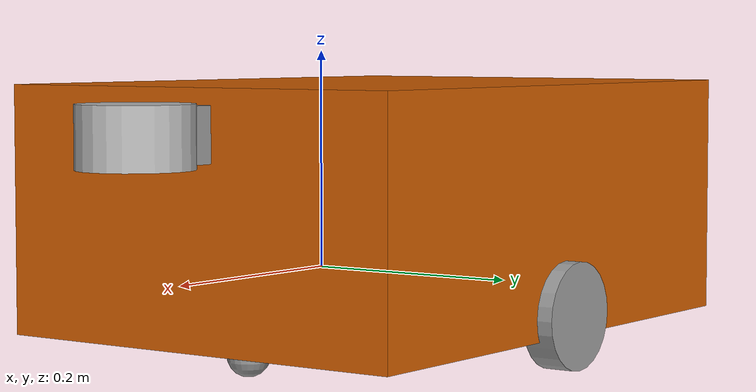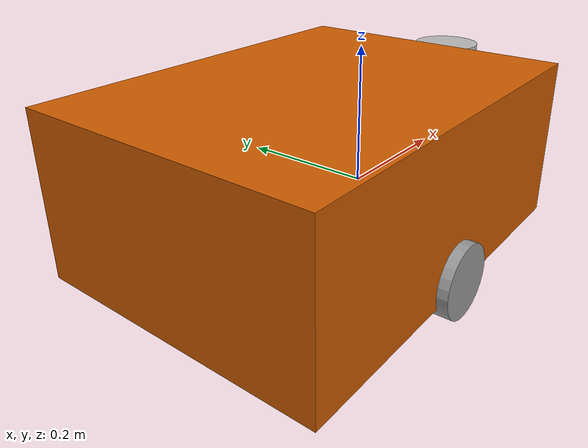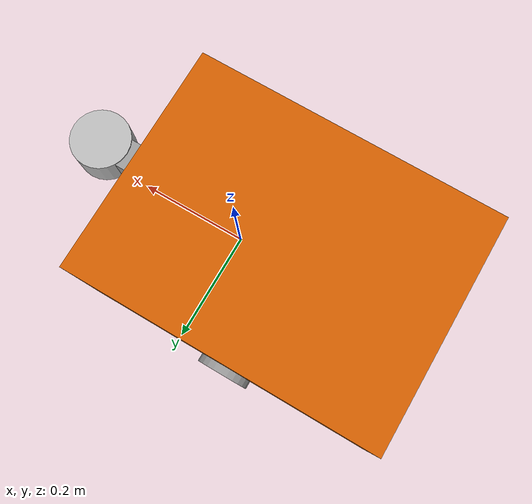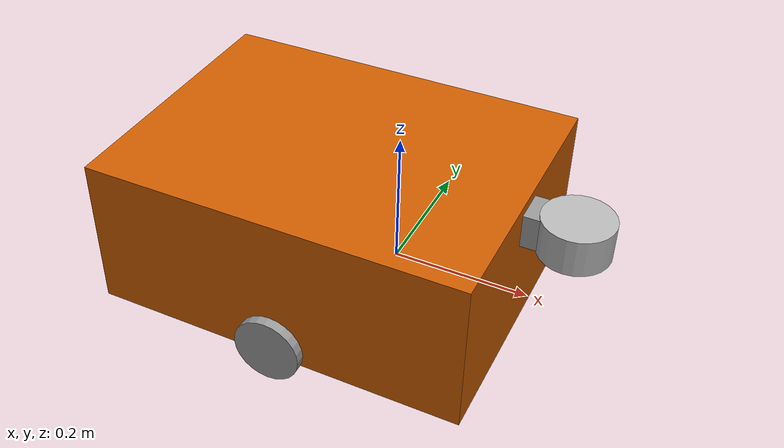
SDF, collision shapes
<?xml version='1.0'?>
<sdf version='1.5'>
  <model name='differential_haibot'>
   <!-- BASE LINK -->
    <link name='base_link'>
      <inertial>
        <mass>10</mass>
        <inertia>
          <ixx>1.66667</ixx>
          <ixy>0</ixy>
          <ixz>0</ixz>
          <iyy>1.66667</iyy>
          <iyz>0</iyz>
          <izz>1.66667</izz>
        </inertia>
        <pose>0 0 0 0 -0 0</pose>
      </inertial>
      <pose>-0.092551 -0.000182 -0.040017 0 -0 0</pose>
      <gravity>1</gravity>
      <self_collide>0</self_collide>
      <kinematic>0</kinematic>
      <enable_wind>0</enable_wind>
      <visual name='visual'>
        <pose>0 0 0.095 0 -0 0</pose>
        <geometry>
          <box>
            <size>0.56 0.418 0.23</size>
          </box>
        </geometry>
        <material>
          <lighting>1</lighting>
          <script>
            <uri>file://media/materials/scripts/gazebo.material</uri>
            <name>Gazebo/Grey</name>
          </script>
          <shader type='pixel'>
            <normal_map>__default__</normal_map>
          </shader>
          <ambient>0.808 0.361 0 1</ambient>
          <diffuse>0.7 0.7 0.7 1</diffuse>
          <specular>0.01 0.01 0.01 1</specular>
          <emissive>0 0 0 1</emissive>
        </material>
        <transparency>0</transparency>
        <cast_shadows>1</cast_shadows>
      </visual>
      <collision name='collision'>
        <laser_retro>0</laser_retro>
        <max_contacts>10</max_contacts>
        <pose>0 0 0.095 0 -0 0</pose>
        <geometry>
          <box>
            <size>0.56 0.418 0.23</size>
          </box>
        </geometry>
        <surface>
          <friction>
            <ode>
              <mu>1</mu>
              <mu2>1</mu2>
              <fdir1>0 0 0</fdir1>
              <slip1>0</slip1>
              <slip2>0</slip2>
            </ode>
            <torsional>
              <coefficient>1</coefficient>
              <patch_radius>0</patch_radius>
              <surface_radius>0</surface_radius>
              <use_patch_radius>1</use_patch_radius>
              <ode>
                <slip>0</slip>
              </ode>
            </torsional>
          </friction>
          <bounce>
            <restitution_coefficient>0</restitution_coefficient>
            <threshold>1e+06</threshold>
          </bounce>
          <contact>
            <collide_without_contact>0</collide_without_contact>
            <collide_without_contact_bitmask>1</collide_without_contact_bitmask>
            <collide_bitmask>1</collide_bitmask>
            <ode>
              <soft_cfm>0</soft_cfm>
              <soft_erp>0.2</soft_erp>
              <kp>1e+13</kp>
              <kd>1</kd>
              <max_vel>0.01</max_vel>
              <min_depth>0</min_depth>
            </ode>
            <bullet>
              <split_impulse>1</split_impulse>
              <split_impulse_penetration_threshold>-0.01</split_impulse_penetration_threshold>
              <soft_cfm>0</soft_cfm>
              <soft_erp>0.2</soft_erp>
              <kp>1e+13</kp>
              <kd>1</kd>
            </bullet>
          </contact>
        </surface>
      </collision>
    </link>

    <!-- LEFT WHEEL LINK -->
    <link name='left_wheel'>
      <inertial>
        <mass>1</mass>
        <inertia>
          <ixx>0.145833</ixx>
          <ixy>0</ixy>
          <ixz>0</ixz>
          <iyy>0.145833</iyy>
          <iyz>0</iyz>
          <izz>0.125</izz>
        </inertia>
        <pose>0 0 0 0 -0 0</pose>
      </inertial>
      <pose>-0.092551 0.208818 -0.040017 -1.57265 0 0</pose>
      <gravity>1</gravity>
      <self_collide>0</self_collide>
      <kinematic>0</kinematic>
      <enable_wind>0</enable_wind>
      <visual name='visual'>
        <pose>0 0 0 0 -0 0</pose>
        <geometry>
          <cylinder>
            <radius>0.05</radius>
            <length>0.03</length>
          </cylinder>
        </geometry>
        <material>
          <lighting>1</lighting>
          <script>
            <uri>file://media/materials/scripts/gazebo.material</uri>
            <name>Gazebo/Grey</name>
          </script>
          <shader type='pixel'>
            <normal_map>__default__</normal_map>
          </shader>
          <ambient>0.3 0.3 0.3 1</ambient>
          <diffuse>0.7 0.7 0.7 1</diffuse>
          <specular>0.01 0.01 0.01 1</specular>
          <emissive>0 0 0 1</emissive>
        </material>
        <transparency>0</transparency>
        <cast_shadows>1</cast_shadows>
      </visual>
      <collision name='collision'>
        <laser_retro>0</laser_retro>
        <max_contacts>10</max_contacts>
        <pose>0 0 0 0 -0 0</pose>
        <geometry>
          <cylinder>
            <radius>0.05</radius>
            <length>0.03</length>
          </cylinder>
        </geometry>
        <surface>
          <friction>
            <ode>
              <mu>1</mu>
              <mu2>1</mu2>
              <fdir1>0 0 0</fdir1>
              <slip1>0</slip1>
              <slip2>0</slip2>
            </ode>
            <torsional>
              <coefficient>1</coefficient>
              <patch_radius>0</patch_radius>
              <surface_radius>0</surface_radius>
              <use_patch_radius>1</use_patch_radius>
              <ode>
                <slip>0</slip>
              </ode>
            </torsional>
          </friction>
          <bounce>
            <restitution_coefficient>0</restitution_coefficient>
            <threshold>1e+06</threshold>
          </bounce>
          <contact>
            <collide_without_contact>0</collide_without_contact>
            <collide_without_contact_bitmask>1</collide_without_contact_bitmask>
            <collide_bitmask>1</collide_bitmask>
            <ode>
              <soft_cfm>0</soft_cfm>
              <soft_erp>0.2</soft_erp>
              <kp>1e+13</kp>
              <kd>1</kd>
              <max_vel>0.01</max_vel>
              <min_depth>0</min_depth>
            </ode>
            <bullet>
              <split_impulse>1</split_impulse>
              <split_impulse_penetration_threshold>-0.01</split_impulse_penetration_threshold>
              <soft_cfm>0</soft_cfm>
              <soft_erp>0.2</soft_erp>
              <kp>1e+13</kp>
              <kd>1</kd>
            </bullet>
          </contact>
        </surface>
      </collision>
    </link>

    <!-- RIGHT WHEEL LINK -->
    <link name='right_wheel'>
      <inertial>
        <mass>1</mass>
        <inertia>
          <ixx>0.145833</ixx>
          <ixy>0</ixy>
          <ixz>0</ixz>
          <iyy>0.145833</iyy>
          <iyz>0</iyz>
          <izz>0.125</izz>
        </inertia>
        <pose>0 0 0 0 -0 0</pose>
      </inertial>
      <pose>-0.092551 -0.209182 -0.040017 -1.57265 0 0</pose>
      <gravity>1</gravity>
      <self_collide>0</self_collide>
      <kinematic>0</kinematic>
      <enable_wind>0</enable_wind>
      <visual name='visual'>
        <pose>0 0 0 0 -0 0</pose>
        <geometry>
          <cylinder>
            <radius>0.05</radius>
            <length>0.03</length>
          </cylinder>
        </geometry>
        <material>
          <lighting>1</lighting>
          <script>
            <uri>file://media/materials/scripts/gazebo.material</uri>
            <name>Gazebo/Grey</name>
          </script>
          <shader type='pixel'>
            <normal_map>__default__</normal_map>
          </shader>
          <ambient>0.3 0.3 0.3 1</ambient>
          <diffuse>0.7 0.7 0.7 1</diffuse>
          <specular>0.01 0.01 0.01 1</specular>
          <emissive>0 0 0 1</emissive>
        </material>
        <transparency>0</transparency>
        <cast_shadows>1</cast_shadows>
      </visual>
      <collision name='collision'>
        <laser_retro>0</laser_retro>
        <max_contacts>10</max_contacts>
        <pose>0 0 0 0 -0 0</pose>
        <geometry>
          <cylinder>
            <radius>0.05</radius>
            <length>0.03</length>
          </cylinder>
        </geometry>
        <surface>
          <friction>
            <ode>
              <mu>1</mu>
              <mu2>1</mu2>
              <fdir1>0 0 0</fdir1>
              <slip1>0</slip1>
              <slip2>0</slip2>
            </ode>
            <torsional>
              <coefficient>1</coefficient>
              <patch_radius>0</patch_radius>
              <surface_radius>0</surface_radius>
              <use_patch_radius>1</use_patch_radius>
              <ode>
                <slip>0</slip>
              </ode>
            </torsional>
          </friction>
          <bounce>
            <restitution_coefficient>0</restitution_coefficient>
            <threshold>1e+06</threshold>
          </bounce>
          <contact>
            <collide_without_contact>0</collide_without_contact>
            <collide_without_contact_bitmask>1</collide_without_contact_bitmask>
            <collide_bitmask>1</collide_bitmask>
            <ode>
              <soft_cfm>0</soft_cfm>
              <soft_erp>0.2</soft_erp>
              <kp>1e+13</kp>
              <kd>1</kd>
              <max_vel>0.01</max_vel>
              <min_depth>0</min_depth>
            </ode>
            <bullet>
              <split_impulse>1</split_impulse>
              <split_impulse_penetration_threshold>-0.01</split_impulse_penetration_threshold>
              <soft_cfm>0</soft_cfm>
              <soft_erp>0.2</soft_erp>
              <kp>1e+13</kp>
              <kd>1</kd>
            </bullet>
          </contact>
        </surface>
      </collision>
    </link>

    <!-- FORWARD BALL LINK -->
    <link name='forward_ball'>
      <inertial>
        <mass>0.5</mass>
        <inertia>
          <ixx>0.05</ixx>
          <ixy>0</ixy>
          <ixz>0</ixz>
          <iyy>0.05</iyy>
          <iyz>0</iyz>
          <izz>0.05</izz>
        </inertia>
        <pose>0 0 0 0 -0 0</pose>
      </inertial>
      <pose>0.107449 -0.000182 -0.070017 0 -0 0</pose>
      <gravity>1</gravity>
      <self_collide>0</self_collide>
      <kinematic>0</kinematic>
      <enable_wind>0</enable_wind>
      <visual name='visual'>
        <pose>0 0 0 0 -0 0</pose>
        <geometry>
          <sphere>
            <radius>0.02</radius>
          </sphere>
        </geometry>
        <material>
          <lighting>1</lighting>
          <script>
            <uri>file://media/materials/scripts/gazebo.material</uri>
            <name>Gazebo/Grey</name>
          </script>
          <shader type='pixel'>
            <normal_map>__default__</normal_map>
          </shader>
          <ambient>0.3 0.3 0.3 1</ambient>
          <diffuse>0.7 0.7 0.7 1</diffuse>
          <specular>0.01 0.01 0.01 1</specular>
          <emissive>0 0 0 1</emissive>
        </material>
        <transparency>0</transparency>
        <cast_shadows>1</cast_shadows>
      </visual>
      <collision name='collision'>
        <laser_retro>0</laser_retro>
        <max_contacts>10</max_contacts>
        <pose>0 0 0 0 -0 0</pose>
        <geometry>
          <sphere>
            <radius>0.02</radius>
          </sphere>
        </geometry>
        <surface>
          <friction>
            <ode>
              <mu>1</mu>
              <mu2>1</mu2>
              <fdir1>0 0 0</fdir1>
              <slip1>0</slip1>
              <slip2>0</slip2>
            </ode>
            <torsional>
              <coefficient>1</coefficient>
              <patch_radius>0</patch_radius>
              <surface_radius>0</surface_radius>
              <use_patch_radius>1</use_patch_radius>
              <ode>
                <slip>0</slip>
              </ode>
            </torsional>
          </friction>
          <bounce>
            <restitution_coefficient>0</restitution_coefficient>
            <threshold>1e+06</threshold>
          </bounce>
          <contact>
            <collide_without_contact>0</collide_without_contact>
            <collide_without_contact_bitmask>1</collide_without_contact_bitmask>
            <collide_bitmask>1</collide_bitmask>
            <ode>
              <soft_cfm>0</soft_cfm>
              <soft_erp>0.2</soft_erp>
              <kp>1e+13</kp>
              <kd>1</kd>
              <max_vel>0.01</max_vel>
              <min_depth>0</min_depth>
            </ode>
            <bullet>
              <split_impulse>1</split_impulse>
              <split_impulse_penetration_threshold>-0.01</split_impulse_penetration_threshold>
              <soft_cfm>0</soft_cfm>
              <soft_erp>0.2</soft_erp>
              <kp>1e+13</kp>
              <kd>1</kd>
            </bullet>
          </contact>
        </surface>
      </collision>
    </link>

    <!-- BACKWARD BALL LINK -->
    <link name='backward_ball'>
      <inertial>
        <mass>0.5</mass>
        <inertia>
          <ixx>0.05</ixx>
          <ixy>0</ixy>
          <ixz>0</ixz>
          <iyy>0.05</iyy>
          <iyz>0</iyz>
          <izz>0.05</izz>
        </inertia>
        <pose>0 0 0 0 -0 0</pose>
      </inertial>
      <pose>-0.292551 -0.000182 -0.070017 0 -0 0</pose>
      <gravity>1</gravity>
      <self_collide>0</self_collide>
      <kinematic>0</kinematic>
      <enable_wind>0</enable_wind>
      <visual name='visual'>
        <pose>0 0 0 0 -0 0</pose>
        <geometry>
          <sphere>
            <radius>0.02</radius>
          </sphere>
        </geometry>
        <material>
          <lighting>1</lighting>
          <script>
            <uri>file://media/materials/scripts/gazebo.material</uri>
            <name>Gazebo/Grey</name>
          </script>
          <shader type='pixel'>
            <normal_map>__default__</normal_map>
          </shader>
          <ambient>0.3 0.3 0.3 1</ambient>
          <diffuse>0.7 0.7 0.7 1</diffuse>
          <specular>0.01 0.01 0.01 1</specular>
          <emissive>0 0 0 1</emissive>
        </material>
        <transparency>0</transparency>
        <cast_shadows>1</cast_shadows>
      </visual>
      <collision name='collision'>
        <laser_retro>0</laser_retro>
        <max_contacts>10</max_contacts>
        <pose>0 0 0 0 -0 0</pose>
        <geometry>
          <sphere>
            <radius>0.02</radius>
          </sphere>
        </geometry>
        <surface>
          <friction>
            <ode>
              <mu>1</mu>
              <mu2>1</mu2>
              <fdir1>0 0 0</fdir1>
              <slip1>0</slip1>
              <slip2>0</slip2>
            </ode>
            <torsional>
              <coefficient>1</coefficient>
              <patch_radius>0</patch_radius>
              <surface_radius>0</surface_radius>
              <use_patch_radius>1</use_patch_radius>
              <ode>
                <slip>0</slip>
              </ode>
            </torsional>
          </friction>
          <bounce>
            <restitution_coefficient>0</restitution_coefficient>
            <threshold>1e+06</threshold>
          </bounce>
          <contact>
            <collide_without_contact>0</collide_without_contact>
            <collide_without_contact_bitmask>1</collide_without_contact_bitmask>
            <collide_bitmask>1</collide_bitmask>
            <ode>
              <soft_cfm>0</soft_cfm>
              <soft_erp>0.2</soft_erp>
              <kp>1e+13</kp>
              <kd>1</kd>
              <max_vel>0.01</max_vel>
              <min_depth>0</min_depth>
            </ode>
            <bullet>
              <split_impulse>1</split_impulse>
              <split_impulse_penetration_threshold>-0.01</split_impulse_penetration_threshold>
              <soft_cfm>0</soft_cfm>
              <soft_erp>0.2</soft_erp>
              <kp>1e+13</kp>
              <kd>1</kd>
            </bullet>
          </contact>
        </surface>
      </collision>
    </link>

    <!-- MOUNT BASE -->
    <link name='mount_base'>
      <inertial>
        <mass>1</mass>
        <inertia>
          <ixx>0.166667</ixx>
          <ixy>0</ixy>
          <ixz>0</ixz>
          <iyy>0.166667</iyy>
          <iyz>0</iyz>
          <izz>0.166667</izz>
        </inertia>
        <pose>0 0 0 0 -0 0</pose>
      </inertial>
      <pose>0.211027 -0.000182 0.129983 0 -0 0</pose>
      <gravity>1</gravity>
      <self_collide>0</self_collide>
      <kinematic>0</kinematic>
      <enable_wind>0</enable_wind>
      <visual name='visual'>
        <pose>0 0 0 0 -0 0</pose>
        <geometry>
          <box>
            <size>0.05 0.05 0.05</size>
          </box>
        </geometry>
        <material>
          <lighting>1</lighting>
          <script>
            <uri>file://media/materials/scripts/gazebo.material</uri>
            <name>Gazebo/Grey</name>
          </script>
          <shader type='pixel'>
            <normal_map>__default__</normal_map>
          </shader>
          <ambient>0.3 0.3 0.3 1</ambient>
          <diffuse>0.7 0.7 0.7 1</diffuse>
          <specular>0.01 0.01 0.01 1</specular>
          <emissive>0 0 0 1</emissive>
        </material>
        <transparency>0</transparency>
        <cast_shadows>1</cast_shadows>
      </visual>
      <collision name='collision'>
        <laser_retro>0</laser_retro>
        <max_contacts>10</max_contacts>
        <pose>0 0 0 0 -0 0</pose>
        <geometry>
          <box>
            <size>0.05 0.05 0.05</size>
          </box>
        </geometry>
        <surface>
          <friction>
            <ode>
              <mu>1</mu>
              <mu2>1</mu2>
              <fdir1>0 0 0</fdir1>
              <slip1>0</slip1>
              <slip2>0</slip2>
            </ode>
            <torsional>
              <coefficient>1</coefficient>
              <patch_radius>0</patch_radius>
              <surface_radius>0</surface_radius>
              <use_patch_radius>1</use_patch_radius>
              <ode>
                <slip>0</slip>
              </ode>
            </torsional>
          </friction>
          <bounce>
            <restitution_coefficient>0</restitution_coefficient>
            <threshold>1e+06</threshold>
          </bounce>
          <contact>
            <collide_without_contact>0</collide_without_contact>
            <collide_without_contact_bitmask>1</collide_without_contact_bitmask>
            <collide_bitmask>1</collide_bitmask>
            <ode>
              <soft_cfm>0</soft_cfm>
              <soft_erp>0.2</soft_erp>
              <kp>1e+13</kp>
              <kd>1</kd>
              <max_vel>0.01</max_vel>
              <min_depth>0</min_depth>
            </ode>
            <bullet>
              <split_impulse>1</split_impulse>
              <split_impulse_penetration_threshold>-0.01</split_impulse_penetration_threshold>
              <soft_cfm>0</soft_cfm>
              <soft_erp>0.2</soft_erp>
              <kp>1e+13</kp>
              <kd>1</kd>
            </bullet>
          </contact>
        </surface>
      </collision>
    </link>

    <!-- HOKUYO LASER LINK -->

    <!-- LIDAR LINK -->
    <link name="lidar">
    <inertial>
      <pose>0.254727 0.0 0.1301 0 -0 0</pose>
      <inertia>
        <ixx>0.001</ixx>
        <ixy>0.000</ixy>
        <ixz>0.000</ixz>
        <iyy>0.001</iyy>
        <iyz>0.000</iyz>
        <izz>0.001</izz>
      </inertia>
      <mass>0.125</mass>
    </inertial>

    <collision name="lidar_sensor_collision">
        <pose>0.254727 0.0 0.1301 0 -0 0</pose>
        <geometry>
          <cylinder>
            <radius>0.0508</radius>
            <length>0.055</length>
          </cylinder>
        </geometry>
      </collision>

      <visual name="lidar_sensor_visual">
        <pose>0.254727 0.0 0.1301 0 -0 0</pose>
        <geometry>
          <mesh>
            <uri>model://turtlebot3_common_meshes/lds.dae</uri>
            <scale>0.001 0.001 0.001</scale>
          </mesh>
        </geometry>
      </visual>

      <sensor name="hls_lfcd_lds" type="ray">
        <always_on>1</always_on>
        <visualize>0</visualize>
        <pose>0.254727 0.0 0.1301 0 -0 0</pose>
        <update_rate>1800</update_rate>
        <ray>
          <scan>
            <horizontal>
              <samples>270</samples>
              <resolution>1.000000</resolution>
              <min_angle>0.000000</min_angle>
              <max_angle>4.710000</max_angle>
            </horizontal>
          </scan>
          <range>
            <min>0.120000</min>
            <max>3.5</max>
            <resolution>0.015000</resolution>
          </range>
          <noise>
            <type>gaussian</type>
            <mean>0.0</mean>
            <stddev>0.01</stddev>
          </noise>
        </ray>
      </sensor>
    </link>

    <!-- JOINT LINKING -->
    <joint name='BASE_TO_LEFTWHEEL' type='revolute'>
      <parent>base_link</parent>
      <child>left_wheel</child>
      <pose>0 0 0 0 -0 0</pose>
      <axis>
        <xyz>-0 -0 -1</xyz>
        <limit>
          <lower>-1.79769e+308</lower>
          <upper>1.79769e+308</upper>
          <effort>-1</effort>
          <velocity>-1</velocity>
        </limit>
        <dynamics>
          <spring_reference>0</spring_reference>
          <spring_stiffness>0</spring_stiffness>
          <damping>0</damping>
        </dynamics>
      </axis>
      <physics>
        <ode>
          <limit>
            <cfm>0</cfm>
            <erp>0.2</erp>
          </limit>
          <suspension>
            <cfm>0</cfm>
            <erp>0.2</erp>
          </suspension>
        </ode>
      </physics>
    </joint>
    <joint name='BASE_TO_RIGHTWHEEL' type='revolute'>
      <parent>base_link</parent>
      <child>right_wheel</child>
      <pose>0 0 0 0 -0 0</pose>
      <axis>
        <xyz>0 0 1</xyz>
        <limit>
          <lower>-1.79769e+308</lower>
          <upper>1.79769e+308</upper>
          <effort>-1</effort>
          <velocity>-1</velocity>
        </limit>
        <dynamics>
          <spring_reference>0</spring_reference>
          <spring_stiffness>0</spring_stiffness>
          <damping>0</damping>
        </dynamics>
      </axis>
      <physics>
        <ode>
          <limit>
            <cfm>0</cfm>
            <erp>0.2</erp>
          </limit>
          <suspension>
            <cfm>0</cfm>
            <erp>0.2</erp>
          </suspension>
        </ode>
      </physics>
    </joint>
    <joint name='BASE_TO_FORWBALL' type='ball'>
      <parent>base_link</parent>
      <child>forward_ball</child>
      <pose>0 0 0 0 -0 0</pose>
      <physics>
        <ode>
          <limit>
            <cfm>0</cfm>
            <erp>0.2</erp>
          </limit>
          <suspension>
            <cfm>0</cfm>
            <erp>0.2</erp>
          </suspension>
        </ode>
      </physics>
    </joint>
    <joint name='BASE_TO_BACKWBALL' type='ball'>
      <parent>base_link</parent>
      <child>backward_ball</child>
      <pose>0 0 0 0 -0 0</pose>
      <physics>
        <ode>
          <limit>
            <cfm>0</cfm>
            <erp>0.2</erp>
          </limit>
          <suspension>
            <cfm>0</cfm>
            <erp>0.2</erp>
          </suspension>
        </ode>
      </physics>
    </joint>
    <joint name='BASE_TO_MOUNT' type='fixed'>
      <parent>base_link</parent>
      <child>mount_base</child>
      <pose>0 0 0 0 -0 0</pose>
      <physics>
        <ode>
          <limit>
            <cfm>0</cfm>
            <erp>0.2</erp>
          </limit>
          <suspension>
            <cfm>0</cfm>
            <erp>0.2</erp>
          </suspension>
        </ode>
      </physics>
    </joint>
    <joint name='MOUNT_TO_SENSOR' type='fixed'>
      <parent>mount_base</parent>
      <child>lidar</child>
      <pose>0 0 0 0 -0 0</pose>
      <physics>
        <ode>
          <limit>
            <cfm>0</cfm>
            <erp>0.2</erp>
          </limit>
          <suspension>
            <cfm>0</cfm>
            <erp>0.2</erp>
          </suspension>
        </ode>
      </physics>
    </joint>
    <static>0</static>
    <allow_auto_disable>1</allow_auto_disable>
  </model>
</sdf>
